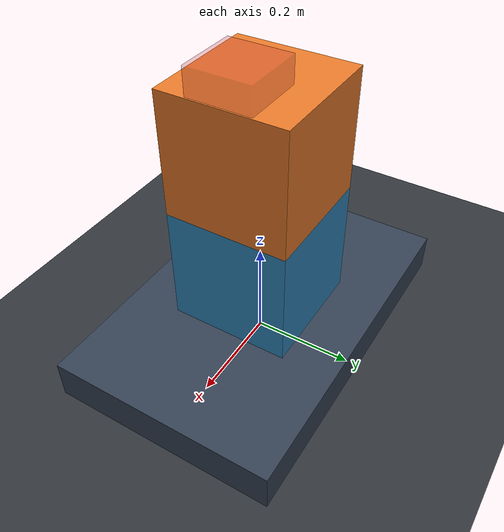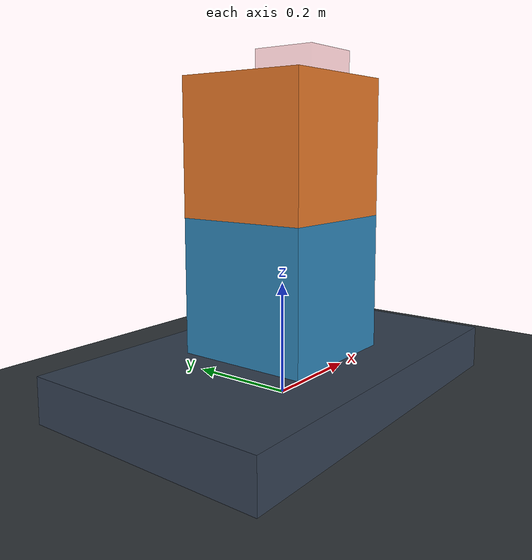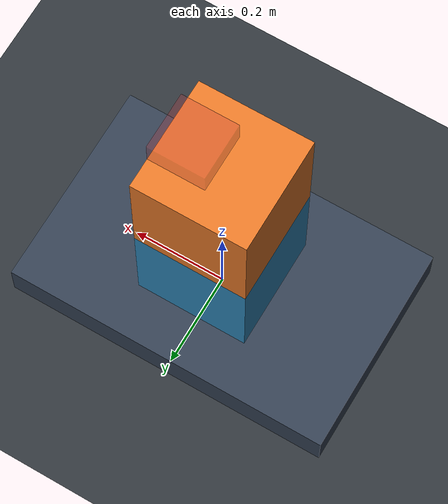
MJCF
<mujoco model="ModuBalance modular balance experiment">
  <compiler angle="degree" autolimits="true"/>
  <option timestep="0.002" gravity="0 0 -9.81" integrator="RK4"/>

  <default>
    <geom friction="0.8 0.01 0.001" condim="3"/>
    <joint damping="0.2" armature="0.01"/>
  </default>

  <visual>
    <headlight ambient="0.35 0.35 0.35" diffuse="0.75 0.75 0.75"/>
    <rgba haze="0.15 0.25 0.35 1"/>
    <global azimuth="135" elevation="-18"/>
  </visual>

  <asset>
    <texture name="ground_tex" type="2d" builtin="checker" rgb1="0.16 0.18 0.20" rgb2="0.22 0.24 0.26" width="512" height="512"/>
    <material name="ground_mat" texture="ground_tex" texrepeat="4 4" reflectance="0.15"/>
    <material name="platform_mat" rgba="0.20 0.25 0.32 1"/>
    <material name="cube_a_mat" rgba="0.18 0.52 0.72 1"/>
    <material name="cube_b_mat" rgba="0.90 0.47 0.16 1"/>
    <material name="payload_mat" rgba="0.72 0.18 0.20 0.8"/>
  </asset>

  <worldbody>
    <light pos="0 -2 3" dir="0 0 -1" directional="true"/>
    <geom name="ground" type="plane" size="5 5 0.1" material="ground_mat"/>

    <body name="platform" pos="0 0 0.04">
      <joint name="platform_slide" type="slide" axis="1 0 0" range="-1.0 1.0" damping="20"/>
      <geom name="platform_geom" type="box" size="0.35 0.225 0.04" mass="12" material="platform_mat"/>

      <!-- Local z=0.16 = platform half-height 0.04 + Cube A half-height 0.12. -->
      <body name="cube_a" pos="0 0 0.16">
        <geom name="cube_a_geom" type="box" size="0.12 0.12 0.12" mass="3" material="cube_a_mat"/>
        <geom name="lower_connector" type="cylinder" size="0.045 0.018" pos="0 0 -0.138" mass="0.05" rgba="0.12 0.12 0.12 1"/>

        <!-- Cube B's body origin and hinge are at the A/B interface.
             Local z=0.12 is Cube A's half-height, not a world coordinate. -->
        <body name="cube_b" pos="0 0 0.12">
          <joint name="balance_hinge" type="hinge" axis="0 1 0" range="-35 35" damping="0.35" armature="0.015"/>
          <!-- Center is 0.12 m above the hinge, so Cube B's bottom touches Cube A's top. -->
          <geom name="cube_b_geom" type="box" size="0.12 0.12 0.12" pos="0 0 0.12" mass="2" material="cube_b_mat"/>
          <geom name="upper_connector" type="cylinder" size="0.05 0.018" euler="90 0 0" mass="0.05" rgba="0.10 0.10 0.10 1"/>
          <site name="connector_sensor_site" pos="0 0 0" size="0.025" rgba="0.2 1 0.2 0.7"/>
          <site name="cube_b_imu" pos="0 0 0.12" size="0.012" rgba="1 1 0 0"/>
          <!-- The payload load is applied at this off-centre contact site at t=5 s. -->
          <site name="payload_site" pos="0.06 0 0.242" size="0.012" rgba="1 0 0 0.8"/>
          <!-- Zero-mass visualization of the equivalent-load payload. It rests 2 mm above Cube B;
               runtime code makes it opaque when its physical wrench becomes active. -->
          <geom name="payload_visual" type="box" pos="0.06 0 0.267" size="0.06 0.06 0.025" mass="0" contype="0" conaffinity="0" rgba="0.72 0.18 0.20 0.28"/>
        </body>
      </body>
    </body>
  </worldbody>

  <actuator>
    <motor name="balance_motor" joint="balance_hinge" gear="1" ctrllimited="true" ctrlrange="-12 12" forcelimited="true" forcerange="-12 12"/>
    <position name="platform_position_servo" joint="platform_slide" kp="800" kv="140" ctrllimited="true" ctrlrange="-1 1" forcelimited="true" forcerange="-200 200"/>
  </actuator>

  <sensor>
    <jointpos name="hinge_position" joint="balance_hinge"/>
    <jointvel name="hinge_velocity" joint="balance_hinge"/>
    <framequat name="cube_b_orientation" objtype="site" objname="cube_b_imu"/>
    <gyro name="cube_b_angular_velocity" site="cube_b_imu"/>
    <actuatorfrc name="balance_actuator_force" actuator="balance_motor"/>
    <force name="connector_force" site="connector_sensor_site"/>
    <torque name="connector_torque" site="connector_sensor_site"/>
    <jointpos name="platform_position" joint="platform_slide"/>
    <jointvel name="platform_velocity" joint="platform_slide"/>
  </sensor>

  <keyframe>
    <key name="initial_disturbance" qpos="0 5" ctrl="0 0"/>
  </keyframe>
</mujoco>
